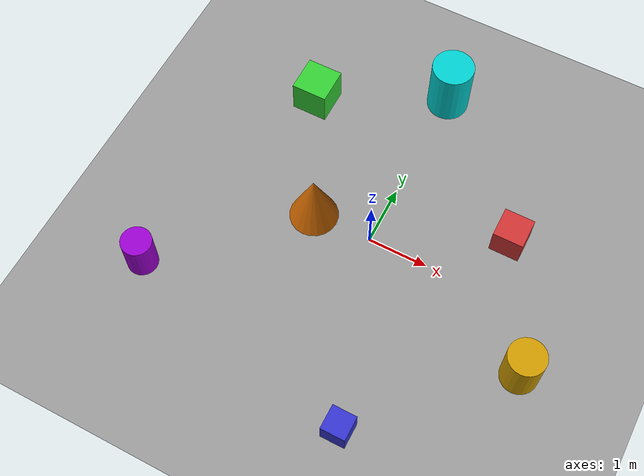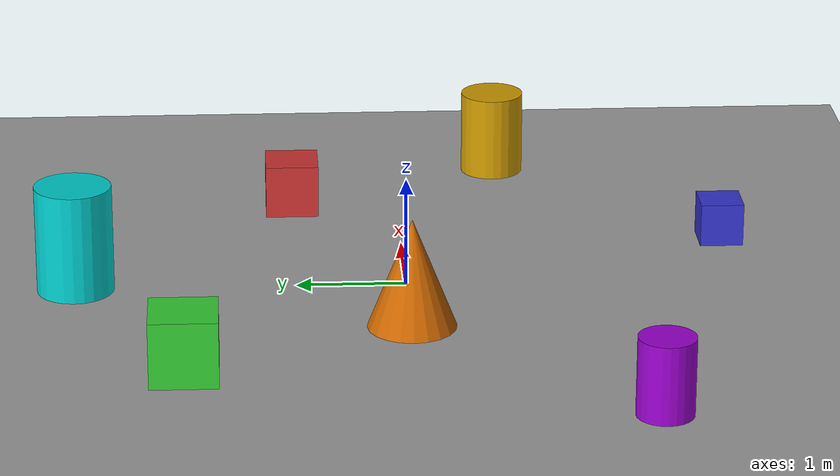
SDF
<sdf version="1.9">
<world name="boxes">
<!--
 ── Required system plugins ─────────────────────────────────
-->
<plugin filename="gz-sim-physics-system" name="gz::sim::systems::Physics"/>
<plugin filename="gz-sim-user-commands-system" name="gz::sim::systems::UserCommands"/>
<plugin filename="gz-sim-scene-broadcaster-system" name="gz::sim::systems::SceneBroadcaster"/>
<!--
 THIS was missing — required for lidar/camera to work
-->
<plugin filename="gz-sim-sensors-system" name="gz::sim::systems::Sensors">
<render_engine>ogre2</render_engine>
  <background_color>0 0 0 1</background_color>
</plugin>
<!-- Required for IMU if you add one later -->
<plugin filename="gz-sim-imu-system" name="gz::sim::systems::Imu"/>
<!--
 ── Sun ─────────────────────────────────────────────────────
-->
<light type="directional" name="sun">
<cast_shadows>true</cast_shadows>
<pose>0 0 10 0 0 0</pose>
<diffuse>0.8 0.8 0.8 1</diffuse>
<specular>0.2 0.2 0.2 1</specular>
<direction>-0.5 0.1 -0.9</direction>
</light>
<!--
 ── Ground ──────────────────────────────────────────────────
-->
<model name="ground_plane">
<static>true</static>
<link name="link">
<collision name="collision">
<geometry>
<plane>
<normal>0 0 1</normal>
<size>100 100</size>
</plane>
</geometry>
</collision>
<visual name="visual">
<geometry>
<plane>
<normal>0 0 1</normal>
<size>100 100</size>
</plane>
</geometry>
<material>
<ambient>0.6 0.6 0.6 1</ambient>
<diffuse>0.6 0.6 0.6 1</diffuse>
</material>
</visual>
</link>
</model>
<!--
 ── Cube 1 ───────────────────────────────────────────────────
-->
<model name="cube1">
<pose>2 1 0.25 0 0 0</pose>
<link name="link">
<collision name="collision">
<geometry>
<box>
<size>0.5 0.5 0.5</size>
</box>
</geometry>
</collision>
<visual name="visual">
<geometry>
<box>
<size>0.5 0.5 0.5</size>
</box>
</geometry>
<material>
<ambient>0.8 0.2 0.2 1</ambient>
<diffuse>0.8 0.2 0.2 1</diffuse>
</material>
</visual>
</link>
</model>
<!--
 ── Cube 2 ───────────────────────────────────────────────────
-->
<model name="cube2">
<pose>-2 2 0.3 0 0 0</pose>
<link name="link">
<collision name="collision">
<geometry>
<box>
<size>0.6 0.6 0.6</size>
</box>
</geometry>
</collision>
<visual name="visual">
<geometry>
<box>
<size>0.6 0.6 0.6</size>
</box>
</geometry>
<material>
<ambient>0.2 0.8 0.2 1</ambient>
<diffuse>0.2 0.8 0.2 1</diffuse>
</material>
</visual>
</link>
</model>
<!--
 ── Cube 3 ───────────────────────────────────────────────────
-->
<model name="cube3">
<pose>1 -3 0.2 0 0 0</pose>
<link name="link">
<collision name="collision">
<geometry>
<box>
<size>0.4 0.4 0.4</size>
</box>
</geometry>
</collision>
<visual name="visual">
<geometry>
<box>
<size>0.4 0.4 0.4</size>
</box>
</geometry>
<material>
<ambient>0.2 0.2 0.8 1</ambient>
<diffuse>0.2 0.2 0.8 1</diffuse>
</material>
</visual>
</link>
</model>
<!--
 ── Cylinder 1 ───────────────────────────────────────────────
-->
<model name="cylinder1">
<pose>3 -1 0.4 0 0 0</pose>
<link name="link">
<collision name="collision">
<geometry>
<cylinder>
<radius>0.3</radius>
<length>0.8</length>
</cylinder>
</geometry>
</collision>
<visual name="visual">
<geometry>
<cylinder>
<radius>0.3</radius>
<length>0.8</length>
</cylinder>
</geometry>
<material>
<ambient>0.8 0.6 0.0 1</ambient>
<diffuse>0.8 0.6 0.0 1</diffuse>
</material>
</visual>
</link>
</model>
<!--
 ── Cylinder 2 ───────────────────────────────────────────────
-->
<model name="cylinder2">
<pose>-3 -2 0.35 0 0 0</pose>
<link name="link">
<collision name="collision">
<geometry>
<cylinder>
<radius>0.25</radius>
<length>0.7</length>
</cylinder>
</geometry>
</collision>
<visual name="visual">
<geometry>
<cylinder>
<radius>0.25</radius>
<length>0.7</length>
</cylinder>
</geometry>
<material>
<ambient>0.6 0.0 0.8 1</ambient>
<diffuse>0.6 0.0 0.8 1</diffuse>
</material>
</visual>
</link>
</model>
<!--
 ── Cylinder 3 ───────────────────────────────────────────────
-->
<model name="cylinder3">
<pose>0 3 0.5 0 0 0</pose>
<link name="link">
<collision name="collision">
<geometry>
<cylinder>
<radius>0.35</radius>
<length>1.0</length>
</cylinder>
</geometry>
</collision>
<visual name="visual">
<geometry>
<cylinder>
<radius>0.35</radius>
<length>1.0</length>
</cylinder>
</geometry>
<material>
<ambient>0.0 0.8 0.8 1</ambient>
<diffuse>0.0 0.8 0.8 1</diffuse>
</material>
</visual>
</link>
</model>
<!--
 ── Cone ─────────────────────────────────────────────────────
-->
<model name="cone1">
<pose>-1 0 0.5 0 0 0</pose>
<link name="link">
<collision name="collision">
<geometry>
<cone>
<radius>0.4</radius>
<length>1.0</length>
</cone>
</geometry>
</collision>
<visual name="visual">
<geometry>
<cone>
<radius>0.4</radius>
<length>1.0</length>
</cone>
</geometry>
<material>
<ambient>0.8 0.4 0.0 1</ambient>
<diffuse>0.8 0.4 0.0 1</diffuse>
</material>
</visual>
</link>
</model>
</world>
</sdf>
